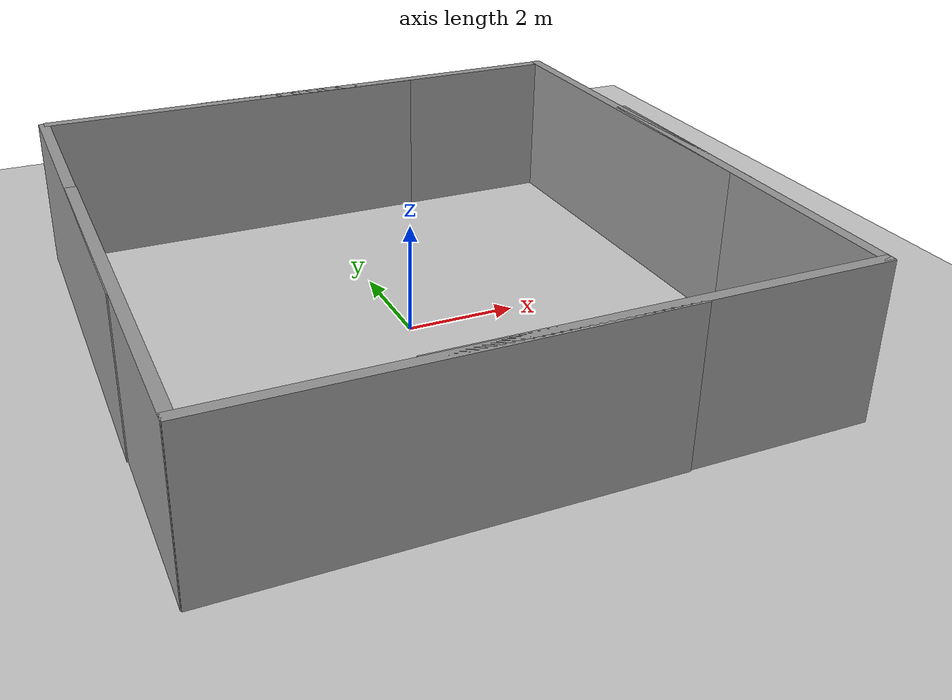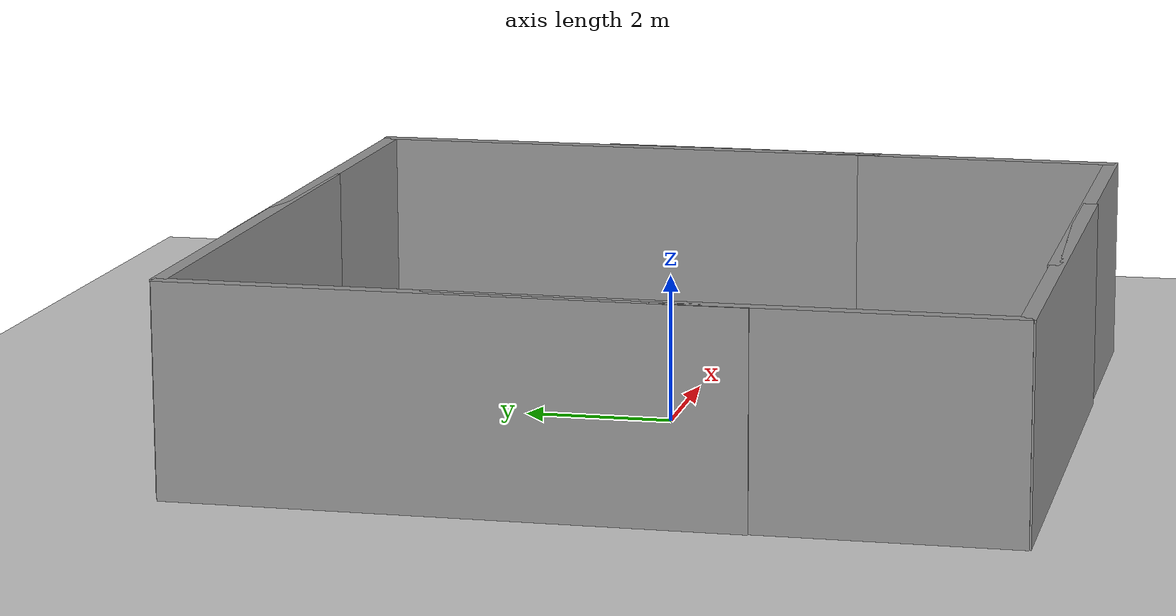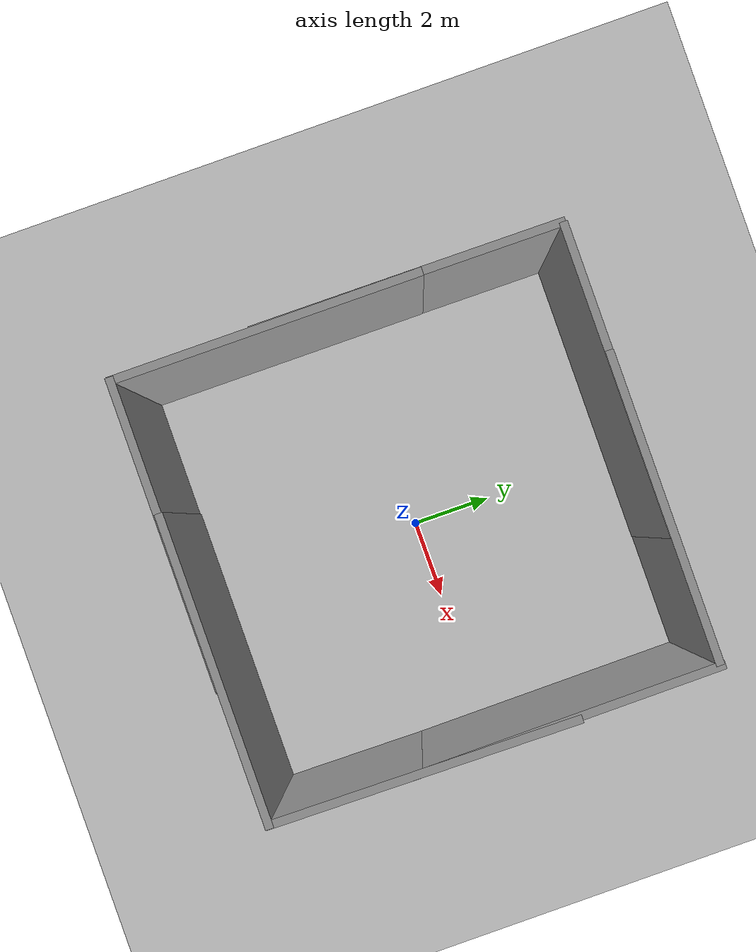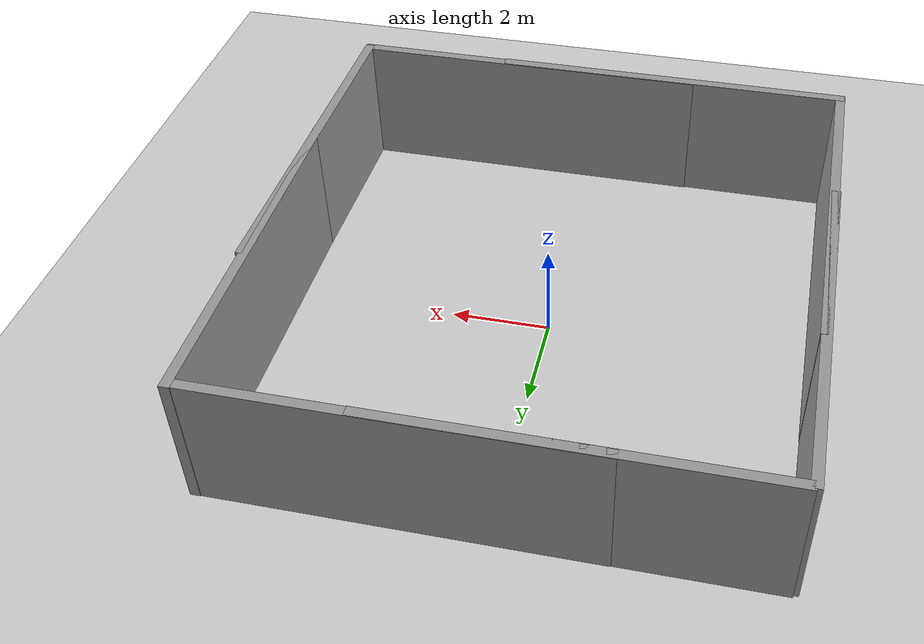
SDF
<sdf version="1.4">
 <world name="default">
  <light name="sun" type="directional">
   <pose>0 0 10 0 -0 0</pose>
   <diffuse>0.8 0.8 0.8 1</diffuse>
   <specular>0.2 0.2 0.2 1</specular>
   <attenuation>
    <range>1000</range>
    <constant>0.9</constant>
    <linear>0.01</linear>
    <quadratic>0.001</quadratic>
   </attenuation>
   <direction>-0.5 0.1 -0.9</direction>
  </light>
  <model name="ground_plane">
   <static>1</static>
   <link name="link">
    <collision name="collision">
     <geometry><plane><normal>0 0 1</normal><size>100 100</size></plane></geometry>
     <surface><friction><ode><mu>100</mu><mu2>50</mu2></ode></friction></surface>
    </collision>
    <visual name="visual">
     <cast_shadows>0</cast_shadows>
     <geometry><plane><normal>0 0 1</normal><size>100 100</size></plane></geometry>
     <material>
      <script><uri>file://media/materials/scripts/gazebo.material</uri><name>Gazebo/Grey</name></script>
     </material>
    </visual>
    <velocity_decay><linear>0</linear><angular>0</angular></velocity_decay>
   </link>
  </model>
  <physics type="ode">
   <max_step_size>0.001</max_step_size>
   <real_time_factor>1</real_time_factor>
   <real_time_update_rate>1000</real_time_update_rate>
   <gravity>0 0 -9.8</gravity>
  </physics>
  <scene><ambient>0.4 0.4 0.4 1</ambient><background>0.7 0.7 0.7 1</background><shadows>1</shadows></scene>
  <spherical_coordinates>
   <surface_model>EARTH_WGS84</surface_model>
   <latitude_deg>0</latitude_deg>
   <longitude_deg>0</longitude_deg>
   <elevation>0</elevation>
   <heading_deg>0</heading_deg>
  </spherical_coordinates>
  <model name="grey_wall">
   <static>1</static>
   <link name="link">
    <pose>0 0 1.4 0 -0 0</pose>
    <collision name="collision"><geometry><box><size>7.5 0.2 2.8</size></box></geometry></collision>
    <visual name="visual">
     <cast_shadows>0</cast_shadows>
     <geometry><box><size>7.5 0.2 2.8</size></box></geometry>
     <material>
      <script>
       <uri>model://grey_wall/materials/scripts</uri>
       <uri>model://grey_wall/materials/textures</uri>
       <name>vrc/grey_wall</name>
      </script>
     </material>
    </visual>
    <velocity_decay><linear>0</linear><angular>0</angular></velocity_decay>
   </link>
   <pose>1.61989 -5.37913 0 0 -0 0</pose>
  </model>
  <model name="grey_wall_0">
   <static>1</static>
   <link name="link">
    <pose>0 0 1.4 0 -0 0</pose>
    <collision name="collision"><geometry><box><size>7.5 0.2 2.8</size></box></geometry></collision>
    <visual name="visual">
     <cast_shadows>0</cast_shadows>
     <geometry><box><size>7.5 0.2 2.8</size></box></geometry>
     <material>
      <script>
       <uri>model://grey_wall/materials/scripts</uri>
       <uri>model://grey_wall/materials/textures</uri>
       <name>vrc/grey_wall</name>
      </script>
     </material>
    </visual>
    <velocity_decay><linear>0</linear><angular>0</angular></velocity_decay>
   </link>
   <pose>-1.63101 -5.40418 0 0 -0 0</pose>
  </model>
  <model name="grey_wall_1">
   <static>1</static>
   <link name="link">
    <pose>0 0 1.4 0 -0 0</pose>
    <collision name="collision"><geometry><box><size>7.5 0.2 2.8</size></box></geometry></collision>
    <visual name="visual">
     <cast_shadows>0</cast_shadows>
     <geometry><box><size>7.5 0.2 2.8</size></box></geometry>
     <material>
      <script>
       <uri>model://grey_wall/materials/scripts</uri>
       <uri>model://grey_wall/materials/textures</uri>
       <name>vrc/grey_wall</name>
      </script>
     </material>
    </visual>
    <velocity_decay><linear>0</linear><angular>0</angular></velocity_decay>
   </link>
   <pose>-5.28625 -1.7296 0 0 0 -1.5729</pose>
  </model>
  <model name="grey_wall_2">
   <static>1</static>
   <link name="link">
    <pose>0 0 1.4 0 -0 0</pose>
    <collision name="collision"><geometry><box><size>7.5 0.2 2.8</size></box></geometry></collision>
    <visual name="visual">
     <cast_shadows>0</cast_shadows>
     <geometry><box><size>7.5 0.2 2.8</size></box></geometry>
     <material>
      <script>
       <uri>model://grey_wall/materials/scripts</uri>
       <uri>model://grey_wall/materials/textures</uri>
       <name>vrc/grey_wall</name>
      </script>
     </material>
    </visual>
    <velocity_decay><linear>0</linear><angular>0</angular></velocity_decay>
   </link>
   <pose>5.32915 -1.69138 0 0 0 -1.58336</pose>
  </model>
  <model name="grey_wall_3">
   <static>1</static>
   <link name="link">
    <pose>0 0 1.4 0 -0 0</pose>
    <collision name="collision"><geometry><box><size>7.5 0.2 2.8</size></box></geometry></collision>
    <visual name="visual">
     <cast_shadows>0</cast_shadows>
     <geometry><box><size>7.5 0.2 2.8</size></box></geometry>
     <material>
      <script>
       <uri>model://grey_wall/materials/scripts</uri>
       <uri>model://grey_wall/materials/textures</uri>
       <name>vrc/grey_wall</name>
      </script>
     </material>
    </visual>
    <velocity_decay><linear>0</linear><angular>0</angular></velocity_decay>
   </link>
   <pose>1.5354 5.37379 0 0 -0 0</pose>
  </model>
  <model name="grey_wall_4">
   <static>1</static>
   <link name="link">
    <pose>0 0 1.4 0 -0 0</pose>
    <collision name="collision"><geometry><box><size>7.5 0.2 2.8</size></box></geometry></collision>
    <visual name="visual">
     <cast_shadows>0</cast_shadows>
     <geometry><box><size>7.5 0.2 2.8</size></box></geometry>
     <material>
      <script>
       <uri>model://grey_wall/materials/scripts</uri>
       <uri>model://grey_wall/materials/textures</uri>
       <name>vrc/grey_wall</name>
      </script>
     </material>
    </visual>
    <velocity_decay><linear>0</linear><angular>0</angular></velocity_decay>
   </link>
   <pose>5.31504 1.73508 -0 0 0 -1.5667</pose>
  </model>
  <model name="grey_wall_5">
   <static>1</static>
   <link name="link">
    <pose>0 0 1.4 0 -0 0</pose>
    <collision name="collision"><geometry><box><size>7.5 0.2 2.8</size></box></geometry></collision>
    <visual name="visual">
     <cast_shadows>0</cast_shadows>
     <geometry><box><size>7.5 0.2 2.8</size></box></geometry>
     <material>
      <script>
       <uri>model://grey_wall/materials/scripts</uri>
       <uri>model://grey_wall/materials/textures</uri>
       <name>vrc/grey_wall</name>
      </script>
     </material>
    </visual>
    <velocity_decay><linear>0</linear><angular>0</angular></velocity_decay>
   </link>
   <pose>-1.52001 5.36315 0 0 -0 0</pose>
  </model>
  <model name="grey_wall_6">
   <static>1</static>
   <link name="link">
    <pose>0 0 1.4 0 -0 0</pose>
    <collision name="collision"><geometry><box><size>7.5 0.2 2.8</size></box></geometry></collision>
    <visual name="visual">
     <cast_shadows>0</cast_shadows>
     <geometry><box><size>7.5 0.2 2.8</size></box></geometry>
     <material>
      <script>
       <uri>model://grey_wall/materials/scripts</uri>
       <uri>model://grey_wall/materials/textures</uri>
       <name>vrc/grey_wall</name>
      </script>
     </material>
    </visual>
    <velocity_decay><linear>0</linear><angular>0</angular></velocity_decay>
   </link>
   <pose>-5.28829 1.67036 0 0 -0 1.56536</pose>
  </model>
 </world>
</sdf>
